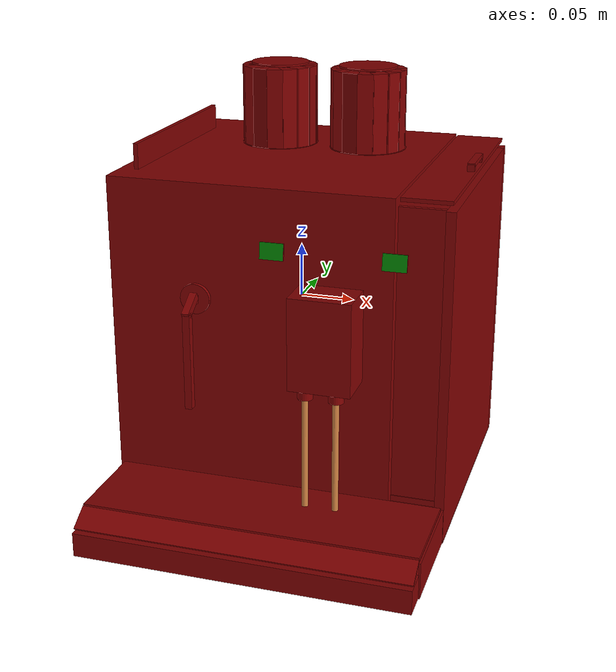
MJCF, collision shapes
<?xml version='1.0' encoding='UTF-8'?>
<mujoco model="model">
  <compiler angle="radian"/>
  <asset>
    <mesh file="visuals/Body001.obj" name="Body001_vis"/>
    <mesh file="visuals/Button001.obj" name="Button001_vis"/>
    <mesh file="visuals/Button002.obj" name="Button002_vis"/>
    <mesh file="visuals/Container001_Clear.obj" name="Container001_Clear_vis"/>
    <mesh file="visuals/Lid001.obj" name="Lid001_vis"/>
    <mesh file="visuals/Lid002.obj" name="Lid002_vis"/>
    <mesh file="visuals/Lid003.obj" name="Lid003_vis"/>
    <mesh file="visuals/Lid004.obj" name="Lid004_vis"/>
    <texture file="visuals/T_BC001.png" name="Body001_material" type="2d"/>
    <material name="Body001_material" rgba="1 1 1 1.0" texture="Body001_material" shininess="0.0" specular="0.3103448502657381"/>
    <texture file="visuals/T_BC001.png" name="Button001_material" type="2d"/>
    <material name="Button001_material" rgba="1 1 1 1.0" texture="Button001_material" shininess="0.0" specular="0.3103448502657381"/>
    <texture file="visuals/T_BC001.png" name="Button002_material" type="2d"/>
    <material name="Button002_material" rgba="1 1 1 1.0" texture="Button002_material" shininess="0.0" specular="0.3103448502657381"/>
    <material name="Container001_Clear_material" rgba="0.08561065047979355 0.08561065047979355 0.08561065047979355 0.5" shininess="0.0" specular="0.3103448502657381"/>
    <material name="Lid001_material" rgba="0.08561065047979355 0.08561065047979355 0.08561065047979355 0.5" shininess="0.0" specular="0.3103448502657381"/>
    <material name="Lid002_material" rgba="0.08561065047979355 0.08561065047979355 0.08561065047979355 0.5" shininess="0.0" specular="0.3103448502657381"/>
    <texture file="visuals/T_BC001.png" name="Lid003_material" type="2d"/>
    <material name="Lid003_material" rgba="1 1 1 1.0" texture="Lid003_material" shininess="0.0" specular="0.3103448502657381"/>
    <texture file="visuals/T_BC001.png" name="Lid004_material" type="2d"/>
    <material name="Lid004_material" rgba="1 1 1 1.0" texture="Lid004_material" shininess="0.0" specular="0.3103448502657381"/>
  </asset>
  <default>
    <default class="visual">
      <geom conaffinity="0" contype="0" group="1" type="mesh"/>
    </default>
    <default class="collision">
      <geom group="0" rgba="0.5 0 0 0.5"/>
    </default>
    <default class="spawn">
      <geom group="0" rgba="1 1 1 0.5" contype="0" conaffinity="0"/>
      <site group="0" rgba="1 1 1 0.5"/>
    </default>
    <default class="region">
      <geom group="1" conaffinity="0" contype="0" rgba="0 1 0 0"/>
    </default>
  </default>
  <worldbody>
    <body>
      <body name="object">
        <geom class="collision" type="box" pos="-0.002070 -0.083765 0.067834" size="0.000204337207833305 0.010971678420901299 0.007716599851846695" quat="0.7055598497390747 -0.04674779623746872 -0.04674779623746872 -0.7055597901344299" name="start_button_1" rgba="0.0 0.5 0 0.5"/>
        <geom class="collision" type="box" pos="0.108911 -0.083765 0.067834" size="0.000204337207833305 0.010971678420901299 0.007716599851846695" quat="0.7055598497390747 -0.04674779623746872 -0.04674779623746872 -0.7055597901344299" name="start_button_2" rgba="0.0 0.5 0 0.5"/>
        <site type="cylinder" rgba="0.8 0.5 0.25 1" size="0.003000000026077032 0.05864422395825386" pos="0.065645 -0.110452 -0.112271" name="coffee_liquid_left"/>
        <site type="cylinder" rgba="0.8 0.5 0.25 1" size="0.003000000026077032 0.05864422395825386" pos="0.037334 -0.110452 -0.112271" name="coffee_liquid_right"/>
        <site rgba="0 0 0 0" size="0.009999999776482582 0.009999999776482582" pos="0.051238500000000006 -0.110468 -0.164034" name="receptacle_place_site"/>
        <geom mesh="Body001_vis" type="mesh" solimp="0.998 0.998 0.001" solref="0.001 1" density="100" friction="0.95 0.3 0.1" class="visual" material="Body001_material"/>
        <geom class="collision" type="box" pos="-0.026893 0.057417 -0.040427" size="0.1339576542377472 0.13550107181072235 0.16337843239307404" quat="1.0 0.0 0.0 0.0"/>
        <geom class="collision" type="box" pos="-0.156041 -0.116122 -0.185479" size="0.0009130783728323877 0.051718905568122864 0.01719672605395317" quat="1.0 0.0 0.0 0.0"/>
        <geom class="collision" type="box" pos="0.000078 -0.180564 -0.191166" size="0.15634481608867645 0.012721915729343891 0.011509913019835949" quat="1.0 0.0 0.0 0.0"/>
        <geom class="collision" type="box" pos="-0.144690 0.050637 0.133584" size="0.0021201136987656355 0.09847182035446167 0.013252734206616879" quat="1.0 0.0 0.0 0.0"/>
        <geom class="collision" type="box" pos="0.051744 -0.096076 -0.004519" size="0.028825528919696808 0.022250883281230927 0.04313024878501892" quat="1.0 0.0 0.0 0.0"/>
        <geom class="collision" type="box" pos="-0.073348 -0.108939 -0.034488" size="0.0034235429484397173 0.0034235429484397173 0.04630231112241745" quat="1.0 0.0 0.0 0.0"/>
        <geom class="collision" type="box" pos="-0.073348 -0.083752 0.018288" size="0.003423547139391303 0.012418799102306366 0.0037176485639065504" quat="1.0 0.0 0.0 0.0"/>
        <geom class="collision" type="cylinder" pos="0.034859 0.106067 0.122241" size="0.037898432463407516 0.001220506732352078" quat="1.0 0.0 0.0 0.0"/>
        <geom class="collision" type="cylinder" pos="-0.055812 0.106067 0.122241" size="0.037898432463407516 0.0012205116217955947" quat="1.0 0.0 0.0 0.0"/>
        <geom class="collision" type="box" pos="0.128094 0.188869 -0.044432" size="0.02975272759795189 0.006358493119478226 0.157749742269516" quat="1.0 0.0 0.0 0.0"/>
        <geom class="collision" type="box" pos="-0.073348 -0.101479 0.015451" size="0.003423547139391303 0.012418799102306366 0.0037176485639065504" quat="0.9604543447494507 0.27843746542930603 -6.182567597392023e-17 2.9974341504795544e-23"/>
        <geom class="collision" type="cylinder" pos="0.037471 -0.110672 -0.051547" size="0.007050690241158009 0.004198190290480852" quat="1.0 0.0 0.0 0.0"/>
        <geom class="collision" type="cylinder" pos="0.065939 -0.110672 -0.051547" size="0.007050690241158009 0.004198190290480852" quat="1.0 0.0 0.0 0.0"/>
        <geom class="collision" type="cylinder" pos="-0.073403 -0.087847 0.018037" size="0.014096751809120178 0.001987086609005928" quat="0.7071067094802856 0.7071068286895752 0.0 0.0"/>
        <geom class="collision" type="box" pos="0.128094 0.062500 -0.183628" size="0.02975272759795189 0.130910724401474 0.021093908697366714" quat="1.0 0.0 0.0 0.0"/>
        <geom class="collision" type="box" pos="0.128094 -0.065250 -0.044432" size="0.02975272759795189 0.0022846893407404423 0.15775004029273987" quat="1.0 0.0 0.0 0.0"/>
        <geom class="collision" type="box" pos="0.156828 -0.116122 -0.185479" size="0.0009130832622759044 0.0517190620303154 0.01719680428504944" quat="1.0 0.0 0.0 0.0"/>
        <geom class="collision" type="box" pos="0.000254 -0.068139 -0.185479" size="0.15616337954998016 0.0037356417160481215 0.017196808010339737" quat="1.0 0.0 0.0 0.0"/>
        <geom class="collision" type="box" pos="0.000254 -0.127223 -0.199579" size="0.15616340935230255 0.05506274104118347 0.003097210079431534" quat="1.0 0.0 0.0 0.0"/>
        <geom class="collision" type="box" pos="0.153546 0.055963 -0.044432" size="0.0044692205265164375 0.1279544234275818 0.1577501893043518" quat="1.0 0.0 0.0 0.0"/>
        <body name="Button001">
          <joint axis="0.0 1.0 0.0" pos="-0.002036 -0.082472 0.067650" limited="true" name="Button001_joint" range="0.0 0.001" type="slide" damping="1" frictionloss="1" armature=".01" stiffness="0.05"/>
          <geom mesh="Button001_vis" type="mesh" solimp="0.998 0.998 0.001" solref="0.001 1" density="100" friction="0.95 0.3 0.1" class="visual" material="Button001_material"/>
          <geom class="collision" type="box" pos="-0.002010 -0.082585 0.067591" size="0.0008649025694467127 0.010971678420901299 0.00771660590544343" quat="0.7056031227111816 -0.04608877748250961 -0.04608878120779991 -0.7056031823158264"/>
        </body>
        <body name="Button002">
          <joint axis="0.0 1.0 0.0" pos="0.108724 -0.082328 0.067650" limited="true" name="Button002_joint" range="0.0 0.001" type="slide" damping="1" frictionloss="1" armature=".01" stiffness="0.05"/>
          <geom mesh="Button002_vis" type="mesh" solimp="0.998 0.998 0.001" solref="0.001 1" density="100" friction="0.95 0.3 0.1" class="visual" material="Button002_material"/>
          <geom class="collision" type="box" pos="0.108793 -0.082585 0.067591" size="0.0008649025694467127 0.010971678420901299 0.00771660590544343" quat="0.7056031227111816 -0.04608877748250961 -0.04608878120779991 -0.7056031823158264"/>
        </body>
        <body name="Container001_Clear">
          <geom mesh="Container001_Clear_vis" type="mesh" solimp="0.998 0.998 0.001" solref="0.001 1" density="100" friction="0.95 0.3 0.1" class="visual" material="Container001_Clear_material"/>
          <geom class="collision" type="box" pos="-0.055722 0.134345 0.160234" size="0.007981296628713608 0.007981296628713608 0.04002876579761505" quat="1.0 0.0 0.0 0.0"/>
          <geom class="collision" type="box" pos="-0.067399 0.131822 0.160234" size="0.007981318049132824 0.007981318049132824 0.04002893716096878" quat="0.9776282906532288 0.0 0.0 0.21033994853496552"/>
          <geom class="collision" type="box" pos="-0.076921 0.124814 0.160234" size="0.007981318980455399 0.007981318980455399 0.04002893716096878" quat="0.9124305844306946 0.0 0.0 0.4092315137386322"/>
          <geom class="collision" type="box" pos="-0.082891 0.114126 0.160234" size="0.007981318049132824 0.007981318049132824 0.04002893716096878" quat="0.8027880787849426 0.0 0.0 0.5962644815444946"/>
          <geom class="collision" type="box" pos="-0.083972 0.103312 0.160234" size="0.007981318980455399 0.007981318980455399 0.04002893716096878" quat="0.6738591194152832 0.0 0.0 0.7388598918914795"/>
          <geom class="collision" type="box" pos="-0.081343 0.093752 0.160234" size="0.007981318049132824 0.007981318049132824 0.04002893716096878" quat="0.5345283150672913 0.0 0.0 0.8451505899429321"/>
          <geom class="collision" type="box" pos="-0.074097 0.084316 0.160234" size="0.007981318049132824 0.007981318049132824 0.04002893716096878" quat="0.3456460237503052 0.0 0.0 0.9383649826049805"/>
          <geom class="collision" type="box" pos="-0.063202 0.078557 0.160234" size="0.007981318049132824 0.007981318049132824 0.04002893716096878" quat="0.13380905985832214 0.0 0.0 0.9910071492195129"/>
          <geom class="collision" type="box" pos="-0.050954 0.077946 0.160234" size="0.007981318980455399 0.007981318980455399 0.04002893716096878" quat="0.08331424742937088 0.0 -0.0 -0.9965233206748962"/>
          <geom class="collision" type="box" pos="-0.040014 0.082269 0.160234" size="0.007981318049132824 0.007981318049132824 0.04002894088625908" quat="0.2878936231136322 0.0 -0.0 -0.9576624035835266"/>
          <geom class="collision" type="box" pos="-0.032133 0.090093 0.160234" size="0.007981318049132824 0.007981318049132824 0.04002893716096878" quat="0.46956780552864075 0.0 -0.0 -0.8828964233398438"/>
          <geom class="collision" type="box" pos="-0.027818 0.100526 0.160234" size="0.007981318049132824 0.007981318049132824 0.04002894088625908" quat="0.635704517364502 0.0 -0.0 -0.7719324827194214"/>
          <geom class="collision" type="box" pos="-0.027838 0.111470 0.160234" size="0.007981318049132824 0.007981318049132824 0.04002893716096878" quat="0.7725211381912231 0.0 -0.0 -0.6349890828132629"/>
          <geom class="collision" type="box" pos="-0.032005 0.121608 0.160234" size="0.007981318049132824 0.007981318049132824 0.04002893716096878" quat="0.8805422782897949 0.0 -0.0 -0.47396764159202576"/>
          <geom class="collision" type="box" pos="-0.037782 0.127983 0.160234" size="0.007981318049132824 0.007981318049132824 0.04002893716096878" quat="0.9421707391738892 0.0 -0.0 -0.3351333439350128"/>
          <geom class="collision" type="box" pos="-0.043787 0.131728 0.160234" size="0.007981318049132824 0.007981318049132824 0.04002893716096878" quat="0.9765869379043579 0.0 -0.0 -0.2151230424642563"/>
          <geom class="collision" type="box" pos="0.046687 0.131728 0.160234" size="0.007981318049132824 0.007981318049132824 0.04002893716096878" quat="0.9765869379043579 0.0 -0.0 -0.2151230424642563"/>
          <geom class="collision" type="box" pos="0.052692 0.127983 0.160234" size="0.007981318049132824 0.007981318049132824 0.04002893716096878" quat="0.9421707391738892 0.0 -0.0 -0.3351333439350128"/>
          <geom class="collision" type="box" pos="0.058469 0.121608 0.160234" size="0.007981318049132824 0.007981318049132824 0.04002893716096878" quat="0.8805422782897949 0.0 -0.0 -0.47396764159202576"/>
          <geom class="collision" type="box" pos="0.062636 0.111470 0.160234" size="0.007981318049132824 0.007981318049132824 0.04002893716096878" quat="0.7725211381912231 0.0 -0.0 -0.6349890828132629"/>
          <geom class="collision" type="box" pos="0.062656 0.100526 0.160234" size="0.007981318049132824 0.007981318049132824 0.04002894088625908" quat="0.635704517364502 0.0 -0.0 -0.7719324827194214"/>
          <geom class="collision" type="box" pos="0.058341 0.090093 0.160234" size="0.007981318049132824 0.007981318049132824 0.04002893716096878" quat="0.46956780552864075 0.0 -0.0 -0.8828964233398438"/>
          <geom class="collision" type="box" pos="0.050460 0.082269 0.160234" size="0.007981318049132824 0.007981318049132824 0.04002894088625908" quat="0.2878936231136322 0.0 -0.0 -0.9576624035835266"/>
          <geom class="collision" type="box" pos="0.039520 0.077946 0.160234" size="0.007981318980455399 0.007981318980455399 0.04002893716096878" quat="0.08331424742937088 0.0 -0.0 -0.9965233206748962"/>
          <geom class="collision" type="box" pos="0.027272 0.078557 0.160234" size="0.007981318049132824 0.007981318049132824 0.04002893716096878" quat="0.13380905985832214 0.0 0.0 0.9910071492195129"/>
          <geom class="collision" type="box" pos="0.016377 0.084316 0.160234" size="0.007981318049132824 0.007981318049132824 0.04002893716096878" quat="0.3456460237503052 0.0 0.0 0.9383649826049805"/>
          <geom class="collision" type="box" pos="0.009131 0.093752 0.160234" size="0.007981318049132824 0.007981318049132824 0.04002893716096878" quat="0.5345283150672913 0.0 0.0 0.8451505899429321"/>
          <geom class="collision" type="box" pos="0.006502 0.103312 0.160234" size="0.007981318980455399 0.007981318980455399 0.04002893716096878" quat="0.6738591194152832 0.0 0.0 0.7388598918914795"/>
          <geom class="collision" type="box" pos="0.034752 0.134345 0.160234" size="0.007981298491358757 0.007981298491358757 0.040028780698776245" quat="1.0 0.0 0.0 0.0"/>
          <geom class="collision" type="box" pos="0.007583 0.114126 0.160234" size="0.007981318049132824 0.007981318049132824 0.04002893716096878" quat="0.8027880787849426 0.0 0.0 0.5962644815444946"/>
          <geom class="collision" type="box" pos="0.013553 0.124814 0.160234" size="0.007981318980455399 0.007981318980455399 0.04002893716096878" quat="0.9124305844306946 0.0 0.0 0.4092315137386322"/>
          <geom class="collision" type="box" pos="0.023075 0.131822 0.160234" size="0.007981318049132824 0.007981318049132824 0.04002893716096878" quat="0.9776282906532288 0.0 0.0 0.21033994853496552"/>
        </body>
        <body name="Lid001">
          <joint axis="0.0 0.0 1.0" pos="-0.055690 0.105946 0.201772" limited="true" name="Lid001_joint" range="0.0 0.05" type="slide" damping="1" frictionloss="1" armature=".01" stiffness="0.05"/>
          <geom mesh="Lid001_vis" type="mesh" solimp="0.998 0.998 0.001" solref="0.001 1" density="100" friction="0.95 0.3 0.1" class="visual" material="Lid001_material"/>
          <geom class="collision" type="cylinder" pos="-0.055569 0.106067 0.202605" size="0.028457922860980034 0.0008476415532641113" quat="1.0 0.0 0.0 0.0"/>
        </body>
        <body name="Lid002">
          <joint axis="0.0 0.0 1.0" pos="0.035088 0.106064 0.201772" limited="true" name="Lid002_joint" range="0.0 0.05" type="slide" damping="1" frictionloss="1" armature=".01" stiffness="0.05"/>
          <geom mesh="Lid002_vis" type="mesh" solimp="0.998 0.998 0.001" solref="0.001 1" density="100" friction="0.95 0.3 0.1" class="visual" material="Lid002_material"/>
          <geom class="collision" type="cylinder" pos="0.033987 0.106067 0.202605" size="0.028457922860980034 0.0008476415532641113" quat="1.0 0.0 0.0 0.0"/>
        </body>
        <body name="Lid003">
          <joint axis="0.0 0.0 1.0" pos="-0.000294 -0.120092 -0.163416" limited="true" name="Lid003_joint" range="0.0 0.05" type="slide" damping="1" frictionloss="1" armature=".01" stiffness="0.05"/>
          <geom mesh="Lid003_vis" type="mesh" solimp="0.998 0.998 0.001" solref="0.001 1" density="100" friction="0.95 0.3 0.1" class="visual" material="Lid003_material"/>
          <geom class="collision" type="box" pos="0.000078 -0.124146 -0.164123" size="0.1563466489315033 0.04450192674994469 0.001674910425208509" quat="1.0 0.0 0.0 0.0"/>
          <geom class="collision" type="box" pos="0.000078 -0.179302 -0.170883" size="0.011857057921588421 0.1563483029603958 0.0010757932905107737" quat="0.6794450879096985 0.1958428919315338 0.195842906832695 -0.6794450283050537"/>
        </body>
        <body name="Lid004">
          <joint axis="0.0 -1.0 0.0" pos="0.106583 0.061682 0.120673" limited="true" name="Lid004_joint" range="0.0 1.5707963267948966" type="hinge" damping="1" frictionloss="1" armature=".01" stiffness="0.05"/>
          <geom mesh="Lid004_vis" type="mesh" solimp="0.998 0.998 0.001" solref="0.001 1" density="100" friction="0.95 0.3 0.1" class="visual" material="Lid004_material"/>
          <geom class="collision" type="box" pos="0.132230 0.059132 0.120668" size="0.02283708192408085 0.13034772872924805 0.001812121830880642" quat="1.0 0.0 0.0 0.0"/>
          <geom class="collision" type="box" pos="0.149903 0.058845 0.128206" size="0.003404012881219387 0.022211479023098946 0.0018121292814612389" quat="1.0 0.0 0.0 0.0"/>
          <geom class="collision" type="box" pos="0.149903 0.039240 0.125014" size="0.0034040254540741444 0.0028967203106731176 0.003933108411729336" quat="1.0 0.0 0.0 0.0"/>
          <geom class="collision" type="box" pos="0.149903 0.078288 0.125014" size="0.0034040254540741444 0.0028967217076569796 0.003933110274374485" quat="1.0 0.0 0.0 0.0"/>
        </body>
        <geom class="region" name="reg_main" type="box" pos="-0.0006425000000000042 0.00016950000000000298 -2.8000000000000247e-05" size="0.1584985 0.19275350000000002 0.202993"/>
      </body>
    </body>
  </worldbody>
  <actuator>
    <motor name="Button001_joint_actuator" joint="Button001_joint" gear="0.1"/>
    <motor name="Button002_joint_actuator" joint="Button002_joint" gear="0.1"/>
    <motor name="Lid001_joint_actuator" joint="Lid001_joint" gear="1"/>
    <motor name="Lid002_joint_actuator" joint="Lid002_joint" gear="1"/>
    <motor name="Lid003_joint_actuator" joint="Lid003_joint" gear="5"/>
    <motor name="Lid004_joint_actuator" joint="Lid004_joint" gear="5"/>
  </actuator>
</mujoco>
